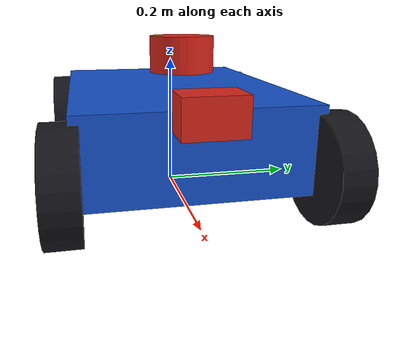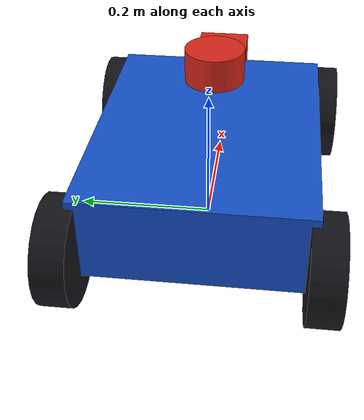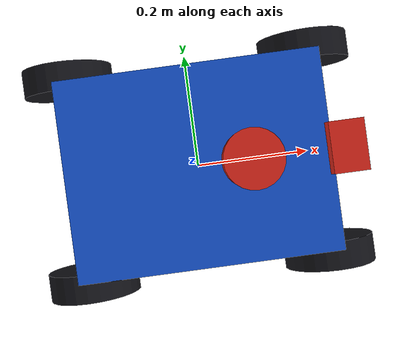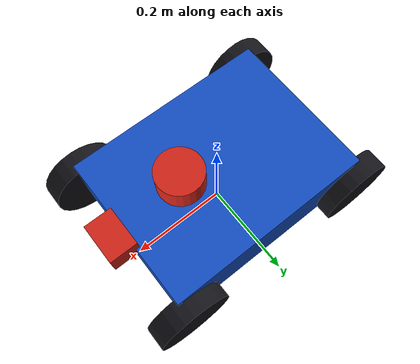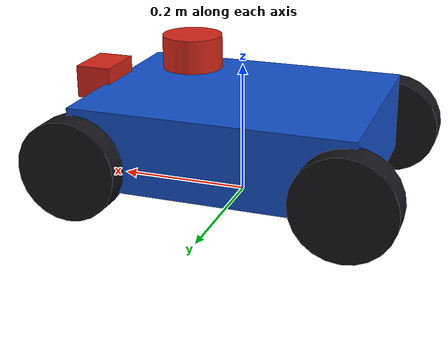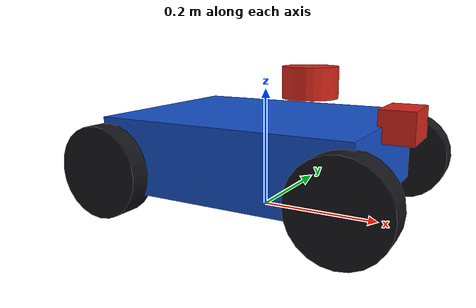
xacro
<?xml version="1.0"?>
<robot xmlns:xacro="http://www.ros.org/wiki/xacro" name="mecamind_mecanum">
  <!-- 底盘几何常量：轮半径 7.5cm；轮心相对底盘中心 前后±0.20m、左右±0.17m。
       这些值与 model.sdf 里的 wheelbase(0.40)/wheel_separation(0.34) 对应。 -->
  <xacro:property name="wheel_radius" value="0.075"/>
  <xacro:property name="wheel_width" value="0.045"/>
  <xacro:property name="wheel_x" value="0.20"/>
  <xacro:property name="wheel_y" value="0.17"/>

  <material name="blue"><color rgba="0.08 0.32 0.80 1"/></material>
  <material name="dark"><color rgba="0.08 0.08 0.10 1"/></material>
  <material name="sensor"><color rgba="0.85 0.15 0.10 1"/></material>

  <!-- base_footprint：机器人在地面上的投影点（无实体的虚拟连杆）。
       ROS 导航约定用它做机器人的根坐标系：它始终贴地（z=0），
       里程计和定位算法都以它为基准，SLAM/Nav2 的 base_frame 都填它。 -->
  <link name="base_footprint"/>

  <link name="base_link">
    <visual>
      <origin xyz="0 0 0.10"/>
      <geometry><box size="0.42 0.32 0.12"/></geometry>
      <material name="blue"/>
    </visual>
    <collision>
      <origin xyz="0 0 0.10"/>
      <geometry><box size="0.42 0.32 0.12"/></geometry>
    </collision>
    <inertial>
      <origin xyz="0 0 0.10"/>
      <mass value="8.0"/>
      <inertia ixx="0.08" ixy="0" ixz="0" iyy="0.12" iyz="0" izz="0.16"/>
    </inertial>
  </link>

  <!-- fixed 关节 = 两连杆刚性固连，TF 是常量，由 robot_state_publisher
       作为静态变换一次性发布 -->
  <joint name="base_footprint_joint" type="fixed">
    <parent link="base_footprint"/>
    <child link="base_link"/>
  </joint>

  <!-- 轮子宏：传入名字和轮心坐标 (x, y)，生成"连杆 + 旋转关节"一套。
       四个轮子只差安装位置，用宏避免复制粘贴四遍。 -->
  <xacro:macro name="wheel" params="name x y">
    <link name="${name}_wheel">
      <visual>
        <origin rpy="${pi/2} 0 0"/>
        <geometry><cylinder radius="${wheel_radius}" length="${wheel_width}"/></geometry>
        <material name="dark"/>
      </visual>
      <collision>
        <origin rpy="${pi/2} 0 0"/>
        <geometry><cylinder radius="${wheel_radius}" length="${wheel_width}"/></geometry>
      </collision>
      <inertial>
        <mass value="0.35"/>
        <inertia ixx="0.001" ixy="0" ixz="0" iyy="0.001" iyz="0" izz="0.001"/>
      </inertial>
    </link>
    <!-- continuous = 可无限旋转的关节（轮子专用），转轴沿 y（滚动轴） -->
    <joint name="${name}_wheel_joint" type="continuous">
      <origin xyz="${x} ${y} ${wheel_radius}"/>
      <parent link="base_link"/>
      <child link="${name}_wheel"/>
      <axis xyz="0 1 0"/>
    </joint>
  </xacro:macro>

  <!-- 展开宏，实例化四个轮子（坐标符号决定前后左右） -->
  <xacro:wheel name="front_left" x="${wheel_x}" y="${wheel_y}"/>
  <xacro:wheel name="front_right" x="${wheel_x}" y="${-wheel_y}"/>
  <xacro:wheel name="rear_left" x="${-wheel_x}" y="${wheel_y}"/>
  <xacro:wheel name="rear_right" x="${-wheel_x}" y="${-wheel_y}"/>

  <!-- 激光雷达连杆：安装在底盘前部偏上（x=0.08, z=0.19，见 joint）。
       frame 名 lidar_link 必须与 Gazebo 传感器的 gz_frame_id 及激光
       消息 header.frame_id 一致，SLAM 才能正确换算激光点位置。 -->
  <link name="lidar_link">
    <visual>
      <origin xyz="0 0 0.025"/>
      <geometry><cylinder radius="0.045" length="0.05"/></geometry>
      <material name="sensor"/>
    </visual>
  </link>
  <joint name="lidar_joint" type="fixed">
    <origin xyz="0.08 0 0.19"/>
    <parent link="base_link"/>
    <child link="lidar_link"/>
  </joint>

  <link name="imu_link"/>
  <joint name="imu_joint" type="fixed">
    <origin xyz="0 0 0.15"/>
    <parent link="base_link"/>
    <child link="imu_link"/>
  </joint>

  <link name="camera_link">
    <visual>
      <geometry><box size="0.055 0.08 0.05"/></geometry>
      <material name="sensor"/>
    </visual>
  </link>
  <joint name="camera_joint" type="fixed">
    <origin xyz="0.23 0 0.16"/>
    <parent link="base_link"/>
    <child link="camera_link"/>
  </joint>

  <!-- 相机光学坐标系：ROS 图像处理约定 z 轴朝前、x 右、y 下，
       与机器人本体约定（x 前、y 左、z 上）不同，所以要绕两个轴
       各转 -90° 得到这个"光学朝向"的frame，视觉算法都以它为准。 -->
  <link name="camera_optical_frame"/>
  <joint name="camera_optical_joint" type="fixed">
    <origin rpy="${-pi/2} 0 ${-pi/2}"/>
    <parent link="camera_link"/>
    <child link="camera_optical_frame"/>
  </joint>
</robot>
